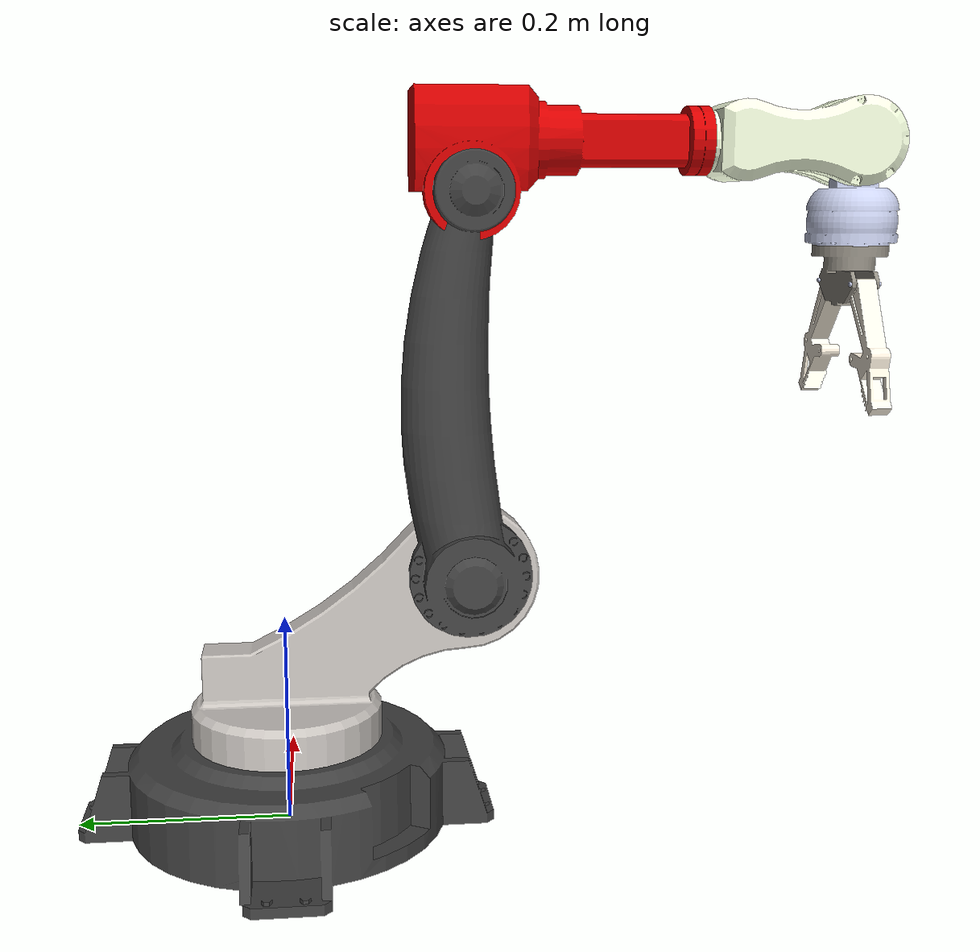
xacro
<?xml version="1.0"?>
<robot xmlns:xacro="http://www.ros.org/wiki/xacro" name="robot_arm_urdf">
    <xacro:arg name="initial_positions_file" default="initial_positions.yaml" />

    <xacro:include filename="$(find robot_arm_urdf)/urdf/robot_arm_urdf.urdf" />
    <xacro:include filename="robot_arm_urdf.gz_ros2_control.xacro" />

    <xacro:robot_arm_urdf_ros2_control name="robot_arm" initial_positions_file="$(arg initial_positions_file)"/>

    <gazebo>
        <plugin
            filename="libgz_ros2_control-system.so"
            name="gz_ros2_control::GazeboSimROS2ControlPlugin">
            <parameters>$(find robot_arm_moveit_config)/config/ros2_controllers.yaml</parameters>
        </plugin>
    </gazebo>
</robot>

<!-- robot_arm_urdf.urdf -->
<robot
  name="robot_arm_urdf">
  <link
    name="base_link">
    <inertial>
      <origin
        xyz="0.00142619144807144 0.00142619144807235 0.0387209988697239"
        rpy="0 0 0" />
      <mass
        value="5.77045683035615" />
      <inertia
        ixx="0.0358649623254085"
        ixy="0.00080037945527639"
        ixz="-6.17308285786931E-05"
        iyy="0.0358649623254085"
        iyz="-6.17308285786879E-05"
        izz="0.0665669780658533" />
    </inertial>
    <visual>
      <origin
        xyz="0 0 0"
        rpy="0 0 0" />
      <geometry>
        <mesh
          filename="package://robot_arm_urdf/meshes/base_link.STL" />
      </geometry>
      <material
        name="">
        <color
          rgba="0.250980392156863 0.250980392156863 0.250980392156863 1" />
      </material>
    </visual>
    <collision>
      <origin
        xyz="0 0 0"
        rpy="0 0 0" />
      <geometry>
        <mesh
          filename="package://robot_arm_urdf/meshes/base_link.STL" />
      </geometry>
    </collision>
  </link>
  <link
    name="link_1">
    <inertial>
      <origin
        xyz="0.00235237666695179 -0.0643399194503954 0.164348327047606"
        rpy="0 0 0" />
      <mass
        value="2.31561877597464" />
      <inertia
        ixx="0.0258417375148999"
        ixy="0.000433797147037483"
        ixz="-0.000325194930426673"
        iyy="0.0111305576351718"
        iyz="0.00973866434150884"
        izz="0.0190337639670921" />
    </inertial>
    <visual>
      <origin
        xyz="0 0 0"
        rpy="0 0 0" />
      <geometry>
        <mesh
          filename="package://robot_arm_urdf/meshes/link_1.STL" />
      </geometry>
      <material
        name="">
        <color
          rgba="0.776470588235294 0.756862745098039 0.737254901960784 1" />
      </material>
    </visual>
    <collision>
      <origin
        xyz="0 0 0"
        rpy="0 0 0" />
      <geometry>
        <mesh
          filename="package://robot_arm_urdf/meshes/link_1.STL" />
      </geometry>
    </collision>
  </link>
  <joint
    name="joint_1"
    type="revolute">
    <origin
      xyz="0 0 0"
      rpy="0 0 0" />
    <parent
      link="base_link" />
    <child
      link="link_1" />
    <axis
      xyz="0 0 1" />
    <limit
      lower="-3.1415"
      upper="3.1415"
      effort="300"
      velocity="3" />
  </joint>
  <link
    name="link_2">
    <inertial>
      <origin
        xyz="-0.0158074413346747 0.00902186818494333 0.142692299596478"
        rpy="0 0 0" />
      <mass
        value="0.995339611371039" />
      <inertia
        ixx="0.0185072986156989"
        ixy="-2.69236672235376E-05"
        ixz="-8.14387504774798E-05"
        iyy="0.0181328588672788"
        iyz="-0.000207024018478611"
        izz="0.00066596546803811" />
    </inertial>
    <visual>
      <origin
        xyz="0 0 0"
        rpy="0 0 0" />
      <geometry>
        <mesh
          filename="package://robot_arm_urdf/meshes/link_2.STL" />
      </geometry>
      <material
        name="">
        <color
          rgba="0.250980392156863 0.250980392156863 0.250980392156863 1" />
      </material>
    </visual>
    <collision>
      <origin
        xyz="0 0 0"
        rpy="0 0 0" />
      <geometry>
        <mesh
          filename="package://robot_arm_urdf/meshes/link_2.STL" />
      </geometry>
    </collision>
  </link>
  <joint
    name="joint_2"
    type="revolute">
    <origin
      xyz="-0.0200000000000009 -0.172892312614965 0.242433518371245"
      rpy="0 0 0" />
    <parent
      link="link_1" />
    <child
      link="link_2" />
    <axis
      xyz="-1 0 0" />
    <limit
      lower="-1.57"
      upper="1.57"
      effort="200"
      velocity="3" />
  </joint>
  <link
    name="link_3">
    <inertial>
      <origin
        xyz="0.0356599701610483 -0.034594707410593 0.0385370324996485"
        rpy="0 0 0" />
      <mass
        value="1.29268396629573" />
      <inertia
        ixx="0.00665121214812056"
        ixy="8.22754627038918E-05"
        ixz="-0.000123622152375581"
        iyy="0.00176598194498611"
        iyz="0.000290644819641566"
        izz="0.00626172582845467" />
    </inertial>
    <visual>
      <origin
        xyz="0 0 0"
        rpy="0 0 0" />
      <geometry>
        <mesh
          filename="package://robot_arm_urdf/meshes/link_3.STL" />
      </geometry>
      <material
        name="">
        <color
          rgba="0.843137254901961 0 0 1" />
      </material>
    </visual>
    <collision>
      <origin
        xyz="0 0 0"
        rpy="0 0 0" />
      <geometry>
        <mesh
          filename="package://robot_arm_urdf/meshes/link_3.STL" />
      </geometry>
    </collision>
  </link>
  <joint
    name="joint_3"
    type="revolute">
    <origin
      xyz="-0.00950000000000014 0 0.35"
      rpy="0 0 0" />
    <parent
      link="link_2" />
    <child
      link="link_3" />
    <axis
      xyz="-1 0 0" />
    <limit
      lower="-0.5236"
      upper="1.0471"
      effort="200"
      velocity="3" />
  </joint>
  <link
    name="link_4">
    <inertial>
      <origin
        xyz="1.400514546019E-07 -0.0752354468372655 6.78485117644456E-07"
        rpy="0 0 0" />
      <mass
        value="0.629542864470802" />
      <inertia
        ixx="0.00198131032254846"
        ixy="1.14439862027045E-08"
        ixz="-1.97420184797469E-08"
        iyy="0.000595932541109469"
        iyz="3.40296078483897E-08"
        izz="0.00214969159606624" />
    </inertial>
    <visual>
      <origin
        xyz="0 0 0"
        rpy="0 0 0" />
      <geometry>
        <mesh
          filename="package://robot_arm_urdf/meshes/link_4.STL" />
      </geometry>
      <material
        name="">
        <color
          rgba="0.956862745098039 1 0.874509803921569 1" />
      </material>
    </visual>
    <collision>
      <origin
        xyz="0 0 0"
        rpy="0 0 0" />
      <geometry>
        <mesh
          filename="package://robot_arm_urdf/meshes/link_4.STL" />
      </geometry>
    </collision>
  </link>
  <joint
    name="joint_4"
    type="revolute">
    <origin
      xyz="0.0375 -0.226 0.045"
      rpy="0 0 0" />
    <parent
      link="link_3" />
    <child
      link="link_4" />
    <axis
      xyz="0 1 0" />
    <limit
      lower="-3.1415"
      upper="3.1415"
      effort="100"
      velocity="3" />
  </joint>
  <link
    name="link_5">
    <inertial>
      <origin
        xyz="4.68375338513738E-17 1.11022302462516E-16 -0.0595366097936"
        rpy="0 0 0" />
      <mass
        value="0.315890461347659" />
      <inertia
        ixx="0.000327918556202627"
        ixy="-2.7970063537737E-20"
        ixz="9.49331402772297E-20"
        iyy="0.000325029795100665"
        iyz="-5.3129884417086E-22"
        izz="0.000219611762822908" />
    </inertial>
    <visual>
      <origin
        xyz="0 0 0"
        rpy="0 0 0" />
      <geometry>
        <mesh
          filename="package://robot_arm_urdf/meshes/link_5.STL" />
      </geometry>
      <material
        name="">
        <color
          rgba="0.792156862745098 0.819607843137255 0.933333333333333 1" />
      </material>
    </visual>
    <collision>
      <origin
        xyz="0 0 0"
        rpy="0 0 0" />
      <geometry>
        <mesh
          filename="package://robot_arm_urdf/meshes/link_5.STL" />
      </geometry>
    </collision>
  </link>
  <joint
    name="joint_5"
    type="revolute">
    <origin
      xyz="0 -0.136166643344977 0"
      rpy="0 0 0" />
    <parent
      link="link_4" />
    <child
      link="link_5" />
    <axis
      xyz="-1 0 0" />
    <limit
      lower="0"
      upper="3.1415"
      effort="100"
      velocity="3" />
  </joint>
  <link
    name="link_6">
    <inertial>
      <origin
        xyz="8.67361737988404E-18 -1.11022302462516E-16 -0.0163202513928217"
        rpy="0 0 0" />
      <mass
        value="0.0763288813393329" />
      <inertia
        ixx="3.21775956437031E-05"
        ixy="-1.18886816814994E-21"
        ixz="-8.72605956714819E-21"
        iyy="3.78561343156334E-05"
        iyz="2.17423943998371E-21"
        izz="3.97566636072768E-05" />
    </inertial>
    <visual>
      <origin
        xyz="0 0 0"
        rpy="0 0 0" />
      <geometry>
        <mesh
          filename="package://robot_arm_urdf/meshes/link_6.STL" />
      </geometry>
      <material
        name="">
        <color
          rgba="0.568627450980392 0.549019607843137 0.509803921568627 1" />
      </material>
    </visual>
    <collision>
      <origin
        xyz="0 0 0"
        rpy="0 0 0" />
      <geometry>
        <mesh
          filename="package://robot_arm_urdf/meshes/link_6.STL" />
      </geometry>
    </collision>
  </link>
  <joint
    name="joint_6"
    type="revolute">
    <origin
      xyz="0 0 -0.0939999999999998"
      rpy="0 0 0" />
    <parent
      link="link_5" />
    <child
      link="link_6" />
    <axis
      xyz="0 0 -1" />
    <limit
      lower="-1.57"
      upper="1.57"
      effort="100"
      velocity="3" />
  </joint>
  <link
    name="pin_R">
    <inertial>
      <origin
        xyz="6.93889390390723E-18 -0.00735686151301151 0"
        rpy="0 0 0" />
      <mass
        value="0.000234048652692439" />
      <inertia
        ixx="2.03755518280964E-08"
        ixy="3.42316334339684E-24"
        ixz="2.64687025436074E-26"
        iyy="3.0728703142925E-10"
        iyz="2.50873465428739E-25"
        izz="2.03755518280964E-08" />
    </inertial>
    <visual>
      <origin
        xyz="0 0 0"
        rpy="0 0 0" />
      <geometry>
        <mesh
          filename="package://robot_arm_urdf/meshes/pin_R.STL" />
      </geometry>
      <material
        name="">
        <color
          rgba="0.792156862745098 0.819607843137255 0.933333333333333 1" />
      </material>
    </visual>
    <collision>
      <origin
        xyz="0 0 0"
        rpy="0 0 0" />
      <geometry>
        <mesh
          filename="package://robot_arm_urdf/meshes/pin_R.STL" />
      </geometry>
    </collision>
  </link>
  <joint
    name="joint_pR"
    type="fixed">
    <origin
      xyz="0.0393920575113502 0.00735686151301129 -0.0343095110959065"
      rpy="0 0 0" />
    <parent
      link="link_6" />
    <child
      link="pin_R" />
    <axis
      xyz="0 0 0" />
  </joint>
  <link
    name="gripper_R">
    <inertial>
      <origin
        xyz="0.0187230080337432 -0.00735686151301151 -0.0506953708845124"
        rpy="0 0 0" />
      <mass
        value="0.0401299740384797" />
      <inertia
        ixx="3.81716808668171E-05"
        ixy="-2.9779695901681E-21"
        ixz="1.55460909014014E-05"
        iyy="4.79794138126841E-05"
        iyz="7.58084342753845E-21"
        izz="1.1951719606009E-05" />
    </inertial>
    <visual>
      <origin
        xyz="0 0 0"
        rpy="0 0 0" />
      <geometry>
        <mesh
          filename="package://robot_arm_urdf/meshes/gripper_R.STL" />
      </geometry>
      <material
        name="">
        <color
          rgba="1 0.96078431372549 0.890196078431372 1" />
      </material>
    </visual>
    <collision>
      <origin
        xyz="0 0 0"
        rpy="0 0 0" />
      <geometry>
        <mesh
          filename="package://robot_arm_urdf/meshes/gripper_R.STL" />
      </geometry>
    </collision>
  </link>
  <joint
    name="joint_gR"
    type="revolute">
    <origin
      xyz="0.0393920575113502 0.00735686151301129 -0.0343095110959065"
      rpy="0 0 0" />
    <parent
      link="link_6" />
    <child
      link="gripper_R" />
    <axis
      xyz="0 1 0" />
    <limit
      lower="0"
      upper="1.0471"
      effort="100"
      velocity="3" />
  </joint>
  <link
    name="pin_L">
    <inertial>
      <origin
        xyz="0 -0.00735686151301163 0"
        rpy="0 0 0" />
      <mass
        value="0.000234048652692439" />
      <inertia
        ixx="2.03755518280964E-08"
        ixy="7.28832234693833E-25"
        ixz="2.71687903016275E-26"
        iyy="3.07287031429251E-10"
        iyz="2.47485864245774E-25"
        izz="2.03755518280964E-08" />
    </inertial>
    <visual>
      <origin
        xyz="0 0 0"
        rpy="0 0 0" />
      <geometry>
        <mesh
          filename="package://robot_arm_urdf/meshes/pin_L.STL" />
      </geometry>
      <material
        name="">
        <color
          rgba="0.792156862745098 0.819607843137255 0.933333333333333 1" />
      </material>
    </visual>
    <collision>
      <origin
        xyz="0 0 0"
        rpy="0 0 0" />
      <geometry>
        <mesh
          filename="package://robot_arm_urdf/meshes/pin_L.STL" />
      </geometry>
    </collision>
  </link>
  <joint
    name="joint_pL"
    type="fixed">
    <origin
      xyz="-0.0393920575113496 0.00735686151301129 -0.0343095110959065"
      rpy="0 0 0" />
    <parent
      link="link_6" />
    <child
      link="pin_L" />
    <axis
      xyz="0 0 0" />
  </joint>
  <link
    name="gripper_L">
    <inertial>
      <origin
        xyz="-0.0187230080337433 -0.00735686151301118 -0.0506953708845123"
        rpy="0 0 0" />
      <mass
        value="0.0401299740384796" />
      <inertia
        ixx="3.8171680866817E-05"
        ixy="1.89341281686884E-21"
        ixz="-1.55460909014013E-05"
        iyy="4.79794138126839E-05"
        iyz="1.0282706381016E-20"
        izz="1.19517196060089E-05" />
    </inertial>
    <visual>
      <origin
        xyz="0 0 0"
        rpy="0 0 0" />
      <geometry>
        <mesh
          filename="package://robot_arm_urdf/meshes/gripper_L.STL" />
      </geometry>
      <material
        name="">
        <color
          rgba="1 0.96078431372549 0.890196078431372 1" />
      </material>
    </visual>
    <collision>
      <origin
        xyz="0 0 0"
        rpy="0 0 0" />
      <geometry>
        <mesh
          filename="package://robot_arm_urdf/meshes/gripper_L.STL" />
      </geometry>
    </collision>
  </link>
  <joint
    name="joint_gL"
    type="revolute">
    <origin
      xyz="-0.0393920575113496 0.00735686151301129 -0.0343095110959065"
      rpy="0 0 0" />
    <parent
      link="link_6" />
    <child
      link="gripper_L" />
    <axis
      xyz="0 1 0" />
    <limit
      lower="-1.0471"
      upper="0"
      effort="100"
      velocity="3" />
  </joint>
</robot>
